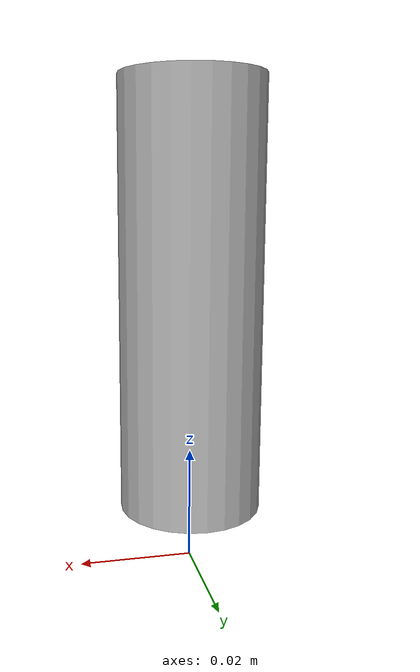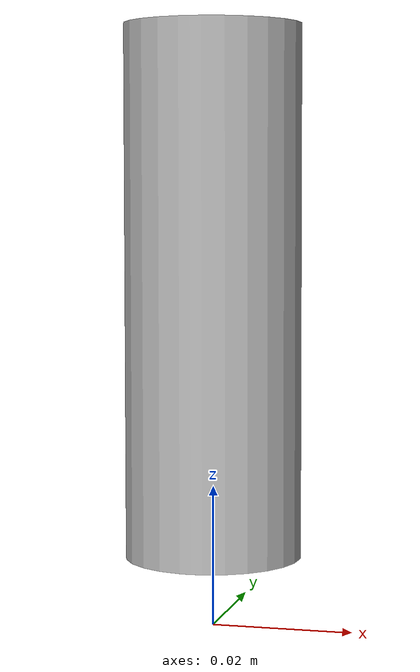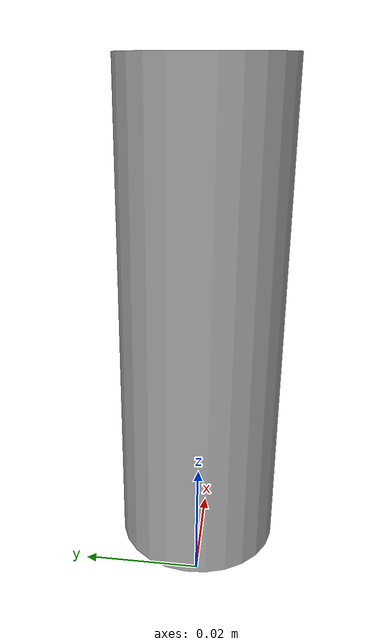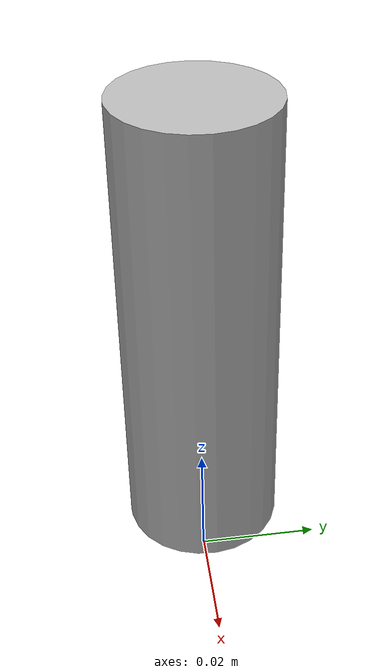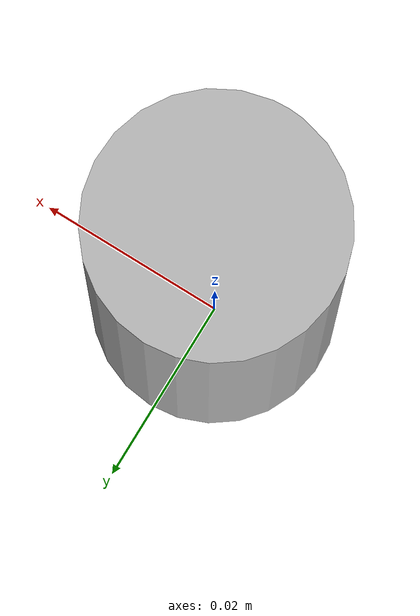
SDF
<sdf version='1.6'>
  <model name='cylinder_s'>
    <link name='object (5)'>
      <pose frame=''>0 0 0.01 0 -0 0</pose>
      <inertial>
        <pose frame=''>0 0 0.0375 0 -0 0</pose>
        <mass>0.036816</mass>
        <inertia>
          <ixx>1.86954e-05</ixx>
          <ixy>-2.04198e-54</ixy>
          <ixz>3.33492e-38</ixz>
          <iyy>1.86954e-05</iyy>
          <iyz>-9.68613e-22</iyz>
          <izz>2.87621e-06</izz>
        </inertia>
      </inertial>
      <collision name='object_collision'>
        <pose frame=''>0 0 0 1.5708 -0 0</pose>
        <geometry>
          <mesh>
            <scale>1 1 1</scale>
            <uri>model://cylinder_s/untitled.dae</uri>
          </mesh>
        </geometry>
        <surface>
          <friction>
            <ode>
              <mu>1.0</mu>
              <mu2>1.0</mu2>
            </ode>
          </friction>
          <contact>
            <ode>
              <kp>100000.0</kp>
              <kd>1.0</kd>
              <min_depth>0.0000001</min_depth>
              <max_vel>0.1</max_vel>
            </ode>
          </contact>
        </surface>
      </collision>
      <visual name='object_visual'>
        <pose frame=''>0 0 0 1.5708 -0 0</pose>
        <geometry>
          <mesh>
            <scale>1 1 1</scale>
            <uri>model://cylinder_s/untitled.dae</uri>
          </mesh>
        </geometry>
      </visual>
    </link>
  </model>
</sdf>
